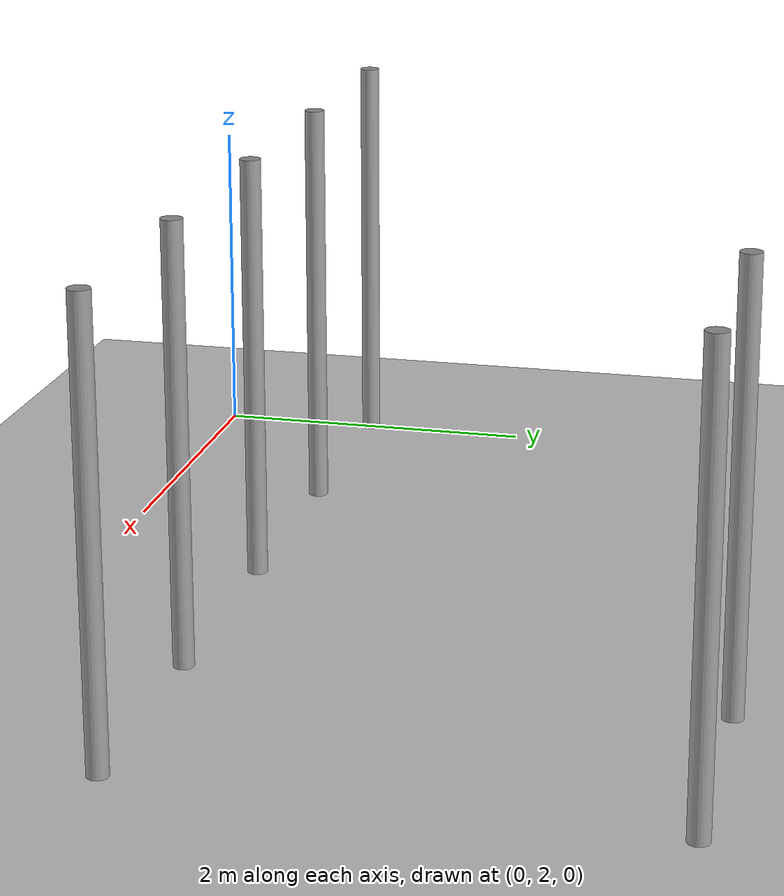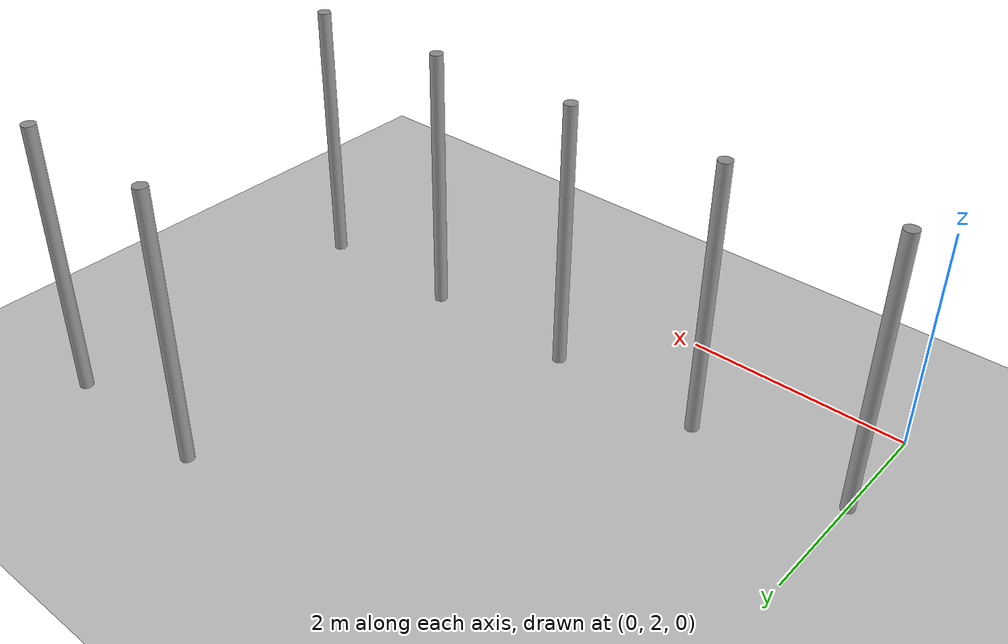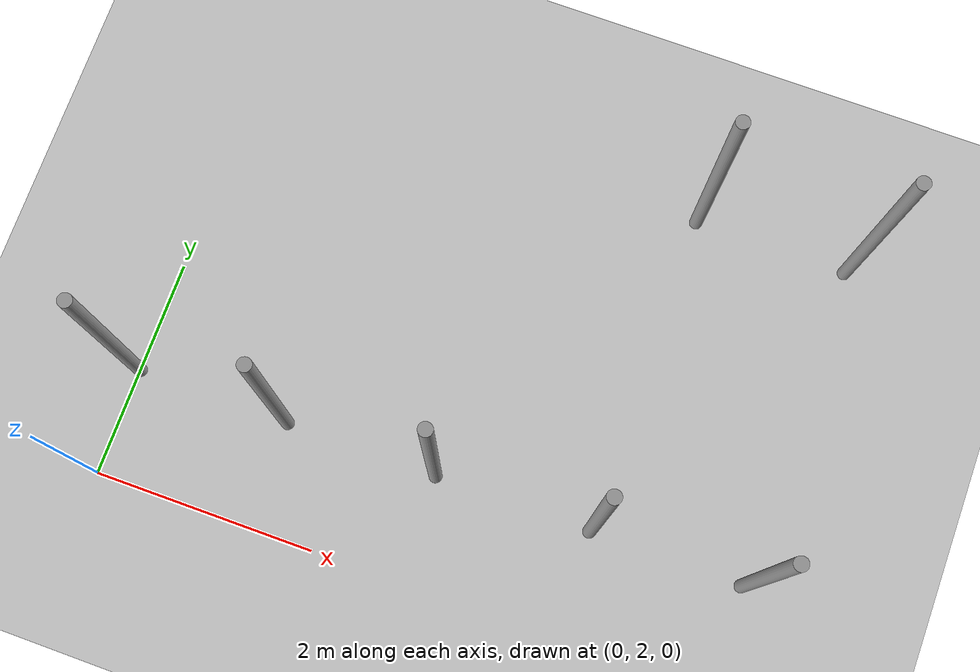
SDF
<sdf version="1.6">
 <world name="default">
  <model name="ground_plane">
   <static>1</static>
   <link name="link">
    <collision name="collision">
     <geometry><plane><normal>0 0 1</normal><size>100 100</size></plane></geometry>
     <surface><friction><ode><mu>100</mu><mu2>50</mu2></ode></friction></surface>
    </collision>
    <visual name="visual">
     <cast_shadows>0</cast_shadows>
     <geometry><plane><normal>0 0 1</normal><size>100 100</size></plane></geometry>
     <material>
      <script><uri>file://media/materials/scripts/gazebo.material</uri><name>Gazebo/Grey</name></script>
     </material>
    </visual>
   </link>
  </model>
  <model name="pole_11_clone">
   <link name="link_0">
    <inertial>
     <mass>0.0364582</mass>
     <inertia>
      <ixx>0.00312124</ixx>
      <ixy>0</ixy>
      <ixz>0</ixz>
      <iyy>0.00312124</iyy>
      <iyz>0</iyz>
      <izz>0.00016615</izz>
     </inertia>
    </inertial>
    <visual name="visual">
     <geometry><cylinder><radius>0.06</radius><length>2.5</length></cylinder></geometry>
     <material>
      <lighting>1</lighting>
      <script><uri>file://media/materials/scripts/gazebo.material</uri><name>Gazebo/Grey</name></script>
      <ambient>0.3 0.3 0.3 1</ambient>
      <diffuse>0.7 0.7 0.7 1</diffuse>
      <specular>0.01 0.01 0.01 1</specular>
      <emissive>0 0 0 1</emissive>
      <shader type="vertex"><normal_map>__default__</normal_map></shader>
     </material>
    </visual>
    <collision name="collision">
     <geometry><cylinder><radius>0.06</radius><length>2.5</length></cylinder></geometry>
     <surface>
      <friction>
       <ode><mu>1</mu><mu2>1</mu2><fdir1>0 0 0</fdir1><slip1>0</slip1><slip2>0</slip2></ode>
       <torsional>
        <coefficient>1</coefficient>
        <patch_radius>0</patch_radius>
        <surface_radius>0</surface_radius>
        <use_patch_radius>1</use_patch_radius>
        <ode><slip>0</slip></ode>
       </torsional>
      </friction>
      <bounce><restitution_coefficient>0</restitution_coefficient><threshold>1e+06</threshold></bounce>
      <contact>
       <collide_without_contact>0</collide_without_contact>
       <collide_without_contact_bitmask>1</collide_without_contact_bitmask>
       <collide_bitmask>1</collide_bitmask>
       <ode>
        <soft_cfm>0</soft_cfm>
        <soft_erp>0.2</soft_erp>
        <kp>1e+13</kp>
        <kd>1</kd>
        <max_vel>0.01</max_vel>
        <min_depth>0</min_depth>
       </ode>
       <bullet>
        <split_impulse>1</split_impulse>
        <split_impulse_penetration_threshold>-0.01</split_impulse_penetration_threshold>
        <soft_cfm>0</soft_cfm>
        <soft_erp>0.2</soft_erp>
        <kp>1e+13</kp>
        <kd>1</kd>
       </bullet>
      </contact>
     </surface>
    </collision>
   </link>
   <static>0</static>
   <pose>0.000165 2.98108 1.24999 -1e-06 1e-06 -0.014085</pose>
  </model>
  <model name="pole_3">
   <link name="link_0">
    <inertial>
     <mass>0.0364582</mass>
     <inertia>
      <ixx>0.00312124</ixx>
      <ixy>0</ixy>
      <ixz>0</ixz>
      <iyy>0.00312124</iyy>
      <iyz>0</iyz>
      <izz>0.00016615</izz>
     </inertia>
    </inertial>
    <visual name="visual">
     <geometry><cylinder><radius>0.06</radius><length>2.5</length></cylinder></geometry>
     <material>
      <lighting>1</lighting>
      <script><uri>file://media/materials/scripts/gazebo.material</uri><name>Gazebo/Grey</name></script>
      <ambient>0.3 0.3 0.3 1</ambient>
      <diffuse>0.7 0.7 0.7 1</diffuse>
      <specular>0.01 0.01 0.01 1</specular>
      <emissive>0 0 0 1</emissive>
      <shader type="vertex"><normal_map>__default__</normal_map></shader>
     </material>
    </visual>
    <collision name="collision">
     <geometry><cylinder><radius>0.06</radius><length>2.5</length></cylinder></geometry>
     <surface>
      <friction>
       <ode><mu>1</mu><mu2>1</mu2><fdir1>0 0 0</fdir1><slip1>0</slip1><slip2>0</slip2></ode>
       <torsional>
        <coefficient>1</coefficient>
        <patch_radius>0</patch_radius>
        <surface_radius>0</surface_radius>
        <use_patch_radius>1</use_patch_radius>
        <ode><slip>0</slip></ode>
       </torsional>
      </friction>
      <bounce><restitution_coefficient>0</restitution_coefficient><threshold>1e+06</threshold></bounce>
      <contact>
       <collide_without_contact>0</collide_without_contact>
       <collide_without_contact_bitmask>1</collide_without_contact_bitmask>
       <collide_bitmask>1</collide_bitmask>
       <ode>
        <soft_cfm>0</soft_cfm>
        <soft_erp>0.2</soft_erp>
        <kp>1e+13</kp>
        <kd>1</kd>
        <max_vel>0.01</max_vel>
        <min_depth>0</min_depth>
       </ode>
       <bullet>
        <split_impulse>1</split_impulse>
        <split_impulse_penetration_threshold>-0.01</split_impulse_penetration_threshold>
        <soft_cfm>0</soft_cfm>
        <soft_erp>0.2</soft_erp>
        <kp>1e+13</kp>
        <kd>1</kd>
       </bullet>
      </contact>
     </surface>
    </collision>
   </link>
   <static>0</static>
   <pose>1.40465 2.98071 1.25 -1e-06 -1e-06 -0.008966</pose>
  </model>
  <model name="pole_5">
   <link name="link_0">
    <inertial>
     <mass>0.0364582</mass>
     <inertia>
      <ixx>0.00312124</ixx>
      <ixy>0</ixy>
      <ixz>0</ixz>
      <iyy>0.00312124</iyy>
      <iyz>0</iyz>
      <izz>0.00016615</izz>
     </inertia>
    </inertial>
    <visual name="visual">
     <geometry><cylinder><radius>0.06</radius><length>2.5</length></cylinder></geometry>
     <material>
      <lighting>1</lighting>
      <script><uri>file://media/materials/scripts/gazebo.material</uri><name>Gazebo/Grey</name></script>
      <ambient>0.3 0.3 0.3 1</ambient>
      <diffuse>0.7 0.7 0.7 1</diffuse>
      <specular>0.01 0.01 0.01 1</specular>
      <emissive>0 0 0 1</emissive>
      <shader type="vertex"><normal_map>__default__</normal_map></shader>
     </material>
    </visual>
    <collision name="collision">
     <geometry><cylinder><radius>0.06</radius><length>2.5</length></cylinder></geometry>
     <surface>
      <friction>
       <ode><mu>1</mu><mu2>1</mu2><fdir1>0 0 0</fdir1><slip1>0</slip1><slip2>0</slip2></ode>
       <torsional>
        <coefficient>1</coefficient>
        <patch_radius>0</patch_radius>
        <surface_radius>0</surface_radius>
        <use_patch_radius>1</use_patch_radius>
        <ode><slip>0</slip></ode>
       </torsional>
      </friction>
      <bounce><restitution_coefficient>0</restitution_coefficient><threshold>1e+06</threshold></bounce>
      <contact>
       <collide_without_contact>0</collide_without_contact>
       <collide_without_contact_bitmask>1</collide_without_contact_bitmask>
       <collide_bitmask>1</collide_bitmask>
       <ode>
        <soft_cfm>0</soft_cfm>
        <soft_erp>0.2</soft_erp>
        <kp>1e+13</kp>
        <kd>1</kd>
        <max_vel>0.01</max_vel>
        <min_depth>0</min_depth>
       </ode>
       <bullet>
        <split_impulse>1</split_impulse>
        <split_impulse_penetration_threshold>-0.01</split_impulse_penetration_threshold>
        <soft_cfm>0</soft_cfm>
        <soft_erp>0.2</soft_erp>
        <kp>1e+13</kp>
        <kd>1</kd>
       </bullet>
      </contact>
     </surface>
    </collision>
   </link>
   <static>0</static>
   <pose>2.79575 2.98061 1.24999 -0 1e-06 -0.008356</pose>
  </model>
  <model name="pole_6">
   <link name="link_0">
    <inertial>
     <mass>0.0364582</mass>
     <inertia>
      <ixx>0.00312124</ixx>
      <ixy>0</ixy>
      <ixz>0</ixz>
      <iyy>0.00312124</iyy>
      <iyz>0</iyz>
      <izz>0.00016615</izz>
     </inertia>
    </inertial>
    <visual name="visual">
     <geometry><cylinder><radius>0.06</radius><length>2.5</length></cylinder></geometry>
     <material>
      <lighting>1</lighting>
      <script><uri>file://media/materials/scripts/gazebo.material</uri><name>Gazebo/Grey</name></script>
      <ambient>0.3 0.3 0.3 1</ambient>
      <diffuse>0.7 0.7 0.7 1</diffuse>
      <specular>0.01 0.01 0.01 1</specular>
      <emissive>0 0 0 1</emissive>
      <shader type="vertex"><normal_map>__default__</normal_map></shader>
     </material>
    </visual>
    <collision name="collision">
     <geometry><cylinder><radius>0.06</radius><length>2.5</length></cylinder></geometry>
     <surface>
      <friction>
       <ode><mu>1</mu><mu2>1</mu2><fdir1>0 0 0</fdir1><slip1>0</slip1><slip2>0</slip2></ode>
       <torsional>
        <coefficient>1</coefficient>
        <patch_radius>0</patch_radius>
        <surface_radius>0</surface_radius>
        <use_patch_radius>1</use_patch_radius>
        <ode><slip>0</slip></ode>
       </torsional>
      </friction>
      <bounce><restitution_coefficient>0</restitution_coefficient><threshold>1e+06</threshold></bounce>
      <contact>
       <collide_without_contact>0</collide_without_contact>
       <collide_without_contact_bitmask>1</collide_without_contact_bitmask>
       <collide_bitmask>1</collide_bitmask>
       <ode>
        <soft_cfm>0</soft_cfm>
        <soft_erp>0.2</soft_erp>
        <kp>1e+13</kp>
        <kd>1</kd>
        <max_vel>0.01</max_vel>
        <min_depth>0</min_depth>
       </ode>
       <bullet>
        <split_impulse>1</split_impulse>
        <split_impulse_penetration_threshold>-0.01</split_impulse_penetration_threshold>
        <soft_cfm>0</soft_cfm>
        <soft_erp>0.2</soft_erp>
        <kp>1e+13</kp>
        <kd>1</kd>
       </bullet>
      </contact>
     </surface>
    </collision>
   </link>
   <static>0</static>
   <pose>4.22233 2.98063 1.24999 0 2e-06 -0.007874</pose>
  </model>
  <model name="pole_7">
   <link name="link_0">
    <inertial>
     <mass>0.0364582</mass>
     <inertia>
      <ixx>0.00312124</ixx>
      <ixy>0</ixy>
      <ixz>0</ixz>
      <iyy>0.00312124</iyy>
      <iyz>0</iyz>
      <izz>0.00016615</izz>
     </inertia>
    </inertial>
    <visual name="visual">
     <geometry><cylinder><radius>0.06</radius><length>2.5</length></cylinder></geometry>
     <material>
      <lighting>1</lighting>
      <script><uri>file://media/materials/scripts/gazebo.material</uri><name>Gazebo/Grey</name></script>
      <ambient>0.3 0.3 0.3 1</ambient>
      <diffuse>0.7 0.7 0.7 1</diffuse>
      <specular>0.01 0.01 0.01 1</specular>
      <emissive>0 0 0 1</emissive>
      <shader type="vertex"><normal_map>__default__</normal_map></shader>
     </material>
    </visual>
    <collision name="collision">
     <geometry><cylinder><radius>0.06</radius><length>2.5</length></cylinder></geometry>
     <surface>
      <friction>
       <ode><mu>1</mu><mu2>1</mu2><fdir1>0 0 0</fdir1><slip1>0</slip1><slip2>0</slip2></ode>
       <torsional>
        <coefficient>1</coefficient>
        <patch_radius>0</patch_radius>
        <surface_radius>0</surface_radius>
        <use_patch_radius>1</use_patch_radius>
        <ode><slip>0</slip></ode>
       </torsional>
      </friction>
      <bounce><restitution_coefficient>0</restitution_coefficient><threshold>1e+06</threshold></bounce>
      <contact>
       <collide_without_contact>0</collide_without_contact>
       <collide_without_contact_bitmask>1</collide_without_contact_bitmask>
       <collide_bitmask>1</collide_bitmask>
       <ode>
        <soft_cfm>0</soft_cfm>
        <soft_erp>0.2</soft_erp>
        <kp>1e+13</kp>
        <kd>1</kd>
        <max_vel>0.01</max_vel>
        <min_depth>0</min_depth>
       </ode>
       <bullet>
        <split_impulse>1</split_impulse>
        <split_impulse_penetration_threshold>-0.01</split_impulse_penetration_threshold>
        <soft_cfm>0</soft_cfm>
        <soft_erp>0.2</soft_erp>
        <kp>1e+13</kp>
        <kd>1</kd>
       </bullet>
      </contact>
     </surface>
    </collision>
   </link>
   <static>0</static>
   <pose>5.60726 2.98066 1.25 0 1e-06 -0.007781</pose>
  </model>
  <model name="pole_14">
   <link name="link_0">
    <inertial>
     <mass>0.0364582</mass>
     <inertia>
      <ixx>0.00312124</ixx>
      <ixy>0</ixy>
      <ixz>0</ixz>
      <iyy>0.00312124</iyy>
      <iyz>0</iyz>
      <izz>0.00016615</izz>
     </inertia>
    </inertial>
    <visual name="visual">
     <geometry><cylinder><radius>0.06</radius><length>2.5</length></cylinder></geometry>
     <material>
      <lighting>1</lighting>
      <script><uri>file://media/materials/scripts/gazebo.material</uri><name>Gazebo/Grey</name></script>
      <ambient>0.3 0.3 0.3 1</ambient>
      <diffuse>0.7 0.7 0.7 1</diffuse>
      <specular>0.01 0.01 0.01 1</specular>
      <emissive>0 0 0 1</emissive>
      <shader type="vertex"><normal_map>__default__</normal_map></shader>
     </material>
    </visual>
    <collision name="collision">
     <geometry><cylinder><radius>0.06</radius><length>2.5</length></cylinder></geometry>
     <surface>
      <friction>
       <ode><mu>1</mu><mu2>1</mu2><fdir1>0 0 0</fdir1><slip1>0</slip1><slip2>0</slip2></ode>
       <torsional>
        <coefficient>1</coefficient>
        <patch_radius>0</patch_radius>
        <surface_radius>0</surface_radius>
        <use_patch_radius>1</use_patch_radius>
        <ode><slip>0</slip></ode>
       </torsional>
      </friction>
      <bounce><restitution_coefficient>0</restitution_coefficient><threshold>1e+06</threshold></bounce>
      <contact>
       <collide_without_contact>0</collide_without_contact>
       <collide_without_contact_bitmask>1</collide_without_contact_bitmask>
       <collide_bitmask>1</collide_bitmask>
       <ode>
        <soft_cfm>0</soft_cfm>
        <soft_erp>0.2</soft_erp>
        <kp>1e+13</kp>
        <kd>1</kd>
        <max_vel>0.01</max_vel>
        <min_depth>0</min_depth>
       </ode>
       <bullet>
        <split_impulse>1</split_impulse>
        <split_impulse_penetration_threshold>-0.01</split_impulse_penetration_threshold>
        <soft_cfm>0</soft_cfm>
        <soft_erp>0.2</soft_erp>
        <kp>1e+13</kp>
        <kd>1</kd>
       </bullet>
      </contact>
     </surface>
    </collision>
   </link>
   <static>0</static>
   <pose>4.21944 5.96058 1.25 0 1e-06 -0.005596</pose>
  </model>
  <model name="pole_15">
   <link name="link_0">
    <inertial>
     <mass>0.0364582</mass>
     <inertia>
      <ixx>0.00312124</ixx>
      <ixy>0</ixy>
      <ixz>0</ixz>
      <iyy>0.00312124</iyy>
      <iyz>0</iyz>
      <izz>0.00016615</izz>
     </inertia>
    </inertial>
    <visual name="visual">
     <geometry><cylinder><radius>0.06</radius><length>2.5</length></cylinder></geometry>
     <material>
      <lighting>1</lighting>
      <script><uri>file://media/materials/scripts/gazebo.material</uri><name>Gazebo/Grey</name></script>
      <ambient>0.3 0.3 0.3 1</ambient>
      <diffuse>0.7 0.7 0.7 1</diffuse>
      <specular>0.01 0.01 0.01 1</specular>
      <emissive>0 0 0 1</emissive>
      <shader type="vertex"><normal_map>__default__</normal_map></shader>
     </material>
    </visual>
    <collision name="collision">
     <geometry><cylinder><radius>0.06</radius><length>2.5</length></cylinder></geometry>
     <surface>
      <friction>
       <ode><mu>1</mu><mu2>1</mu2><fdir1>0 0 0</fdir1><slip1>0</slip1><slip2>0</slip2></ode>
       <torsional>
        <coefficient>1</coefficient>
        <patch_radius>0</patch_radius>
        <surface_radius>0</surface_radius>
        <use_patch_radius>1</use_patch_radius>
        <ode><slip>0</slip></ode>
       </torsional>
      </friction>
      <bounce><restitution_coefficient>0</restitution_coefficient><threshold>1e+06</threshold></bounce>
      <contact>
       <collide_without_contact>0</collide_without_contact>
       <collide_without_contact_bitmask>1</collide_without_contact_bitmask>
       <collide_bitmask>1</collide_bitmask>
       <ode>
        <soft_cfm>0</soft_cfm>
        <soft_erp>0.2</soft_erp>
        <kp>1e+13</kp>
        <kd>1</kd>
        <max_vel>0.01</max_vel>
        <min_depth>0</min_depth>
       </ode>
       <bullet>
        <split_impulse>1</split_impulse>
        <split_impulse_penetration_threshold>-0.01</split_impulse_penetration_threshold>
        <soft_cfm>0</soft_cfm>
        <soft_erp>0.2</soft_erp>
        <kp>1e+13</kp>
        <kd>1</kd>
       </bullet>
      </contact>
     </surface>
    </collision>
   </link>
   <static>0</static>
   <pose>5.62343 5.96052 1.25 0 1e-06 -0.005556</pose>
  </model>
 </world>
</sdf>
